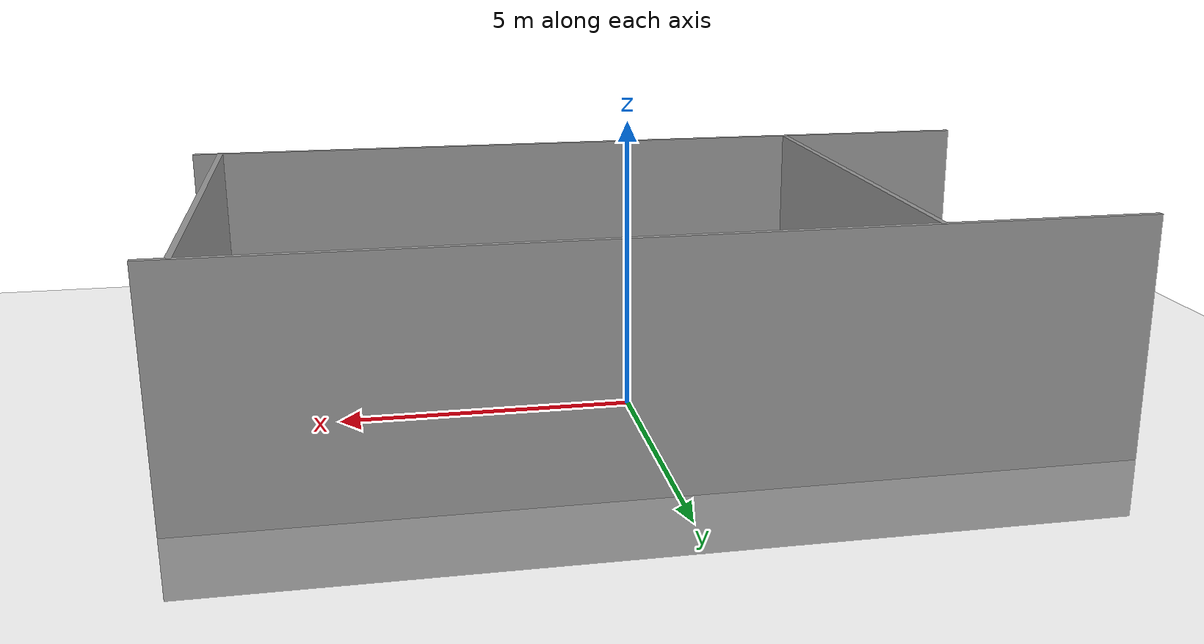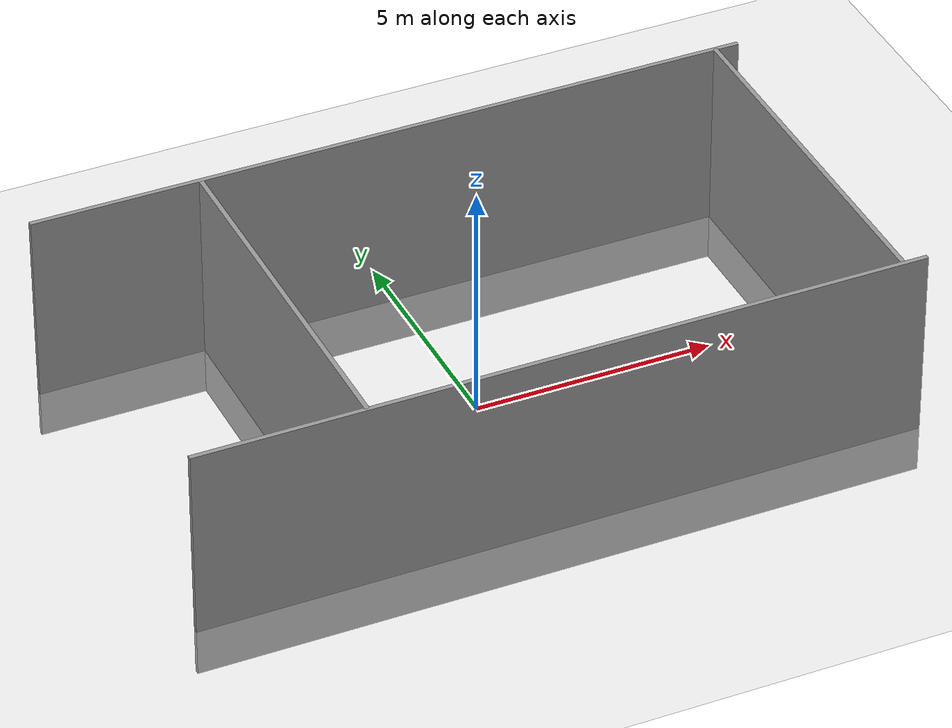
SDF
<sdf version="1.4">
 <world name="test_world1">
  <light name="sun" type="directional">
   <pose>0 0 10 0 -0 0</pose>
   <diffuse>0.8 0.8 0.8 1</diffuse>
   <specular>0.2 0.2 0.2 1</specular>
   <attenuation>
    <range>1000</range>
    <constant>0.9</constant>
    <linear>0.01</linear>
    <quadratic>0.001</quadratic>
   </attenuation>
   <direction>-0.5 0.1 -0.9</direction>
  </light>
  <gravity>0 0 -9.8</gravity>
  <magnetic_field>6e-06 2.3e-05 -4.2e-05</magnetic_field>
  <atmosphere type="adiabatic"/>
  <physics type="ode">
   <max_step_size>0.001</max_step_size>
   <real_time_factor>1</real_time_factor>
   <real_time_update_rate>1000</real_time_update_rate>
  </physics>
  <scene><ambient>0.4 0.4 0.4 1</ambient><background>0.7 0.7 0.7 1</background><shadows>1</shadows></scene>
  <spherical_coordinates>
   <surface_model>EARTH_WGS84</surface_model>
   <latitude_deg>0</latitude_deg>
   <longitude_deg>0</longitude_deg>
   <elevation>0</elevation>
   <heading_deg>0</heading_deg>
  </spherical_coordinates>
  <include><uri>model://ground_plane</uri></include>
  <model name="wall_left">
   <pose>0 -4 1.5 0 0 0</pose>
   <static>1</static>
   <link name="link">
    <inertial>
     <mass>1</mass>
     <inertia>
      <ixx>0.166667</ixx>
      <ixy>0</ixy>
      <ixz>0</ixz>
      <iyy>0.166667</iyy>
      <iyz>0</iyz>
      <izz>0.166667</izz>
     </inertia>
    </inertial>
    <collision name="collision"><geometry><box><size>15 0.1 5</size></box></geometry></collision>
    <visual name="visual">
     <geometry><box><size>15 0.1 5</size></box></geometry>
     <material>
      <script><name>Gazebo/Grey</name><uri>file://media/materials/scripts/gazebo.material</uri></script>
     </material>
    </visual>
   </link>
  </model>
  <model name="wall_right">
   <pose>0 4 1.5 0 0 0</pose>
   <static>1</static>
   <link name="link">
    <inertial>
     <mass>1</mass>
     <inertia>
      <ixx>0.166667</ixx>
      <ixy>0</ixy>
      <ixz>0</ixz>
      <iyy>0.166667</iyy>
      <iyz>0</iyz>
      <izz>0.166667</izz>
     </inertia>
    </inertial>
    <collision name="collision"><geometry><box><size>15 0.1 5</size></box></geometry></collision>
    <visual name="visual">
     <geometry><box><size>15 0.1 5</size></box></geometry>
     <material>
      <script><name>Gazebo/Grey</name><uri>file://media/materials/scripts/gazebo.material</uri></script>
     </material>
    </visual>
   </link>
  </model>
  <model name="wall_front">
   <pose>7 0 1.5 0 0 0</pose>
   <static>1</static>
   <link name="link">
    <inertial>
     <mass>1</mass>
     <inertia>
      <ixx>0.166667</ixx>
      <ixy>0</ixy>
      <ixz>0</ixz>
      <iyy>0.166667</iyy>
      <iyz>0</iyz>
      <izz>0.166667</izz>
     </inertia>
    </inertial>
    <collision name="collision"><geometry><box><size>0.1 8 5</size></box></geometry></collision>
    <visual name="visual">
     <geometry><box><size>0.1 8 5</size></box></geometry>
     <material>
      <script><name>Gazebo/Grey</name><uri>file://media/materials/scripts/gazebo.material</uri></script>
     </material>
    </visual>
   </link>
  </model>
  <model name="wall_rear">
   <pose>-4 0 1.5 0 0 0</pose>
   <static>1</static>
   <link name="link">
    <inertial>
     <mass>1</mass>
     <inertia>
      <ixx>0.166667</ixx>
      <ixy>0</ixy>
      <ixz>0</ixz>
      <iyy>0.166667</iyy>
      <iyz>0</iyz>
      <izz>0.166667</izz>
     </inertia>
    </inertial>
    <collision name="collision"><geometry><box><size>0.1 8 5</size></box></geometry></collision>
    <visual name="visual">
     <geometry><box><size>0.1 8 5</size></box></geometry>
     <material>
      <script><name>Gazebo/Grey</name><uri>file://media/materials/scripts/gazebo.material</uri></script>
     </material>
    </visual>
   </link>
  </model>
 </world>
</sdf>
